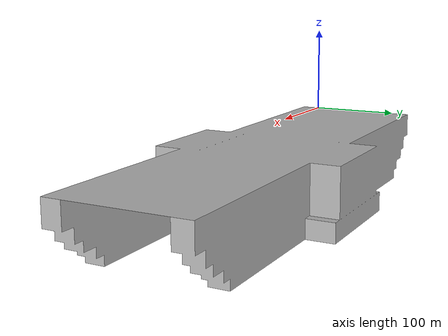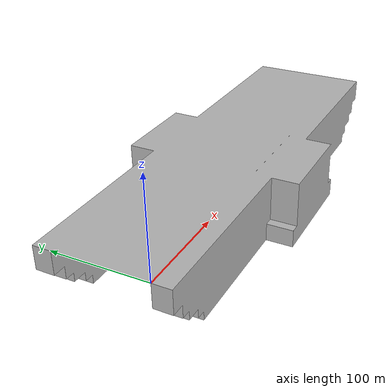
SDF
<?xml version="1.0" ?>
<sdf version="1.0">
<model name="slope_complete">
<static>true</static>
<link name="base">
<pose>0 0 0 0 0 0</pose>
<visual name="visual">
<geometry>
<mesh>
<uri>model://slope/meshes/slope_complete.stl</uri>
</mesh>
</geometry></visual>
<collision name="simple_collision">
<geometry>
<mesh>
<uri>model://slope/meshes/slope_complete.stl</uri>
</mesh>
</geometry>
<surface>
        <friction>
          <ode>
            <mu>1.00</mu>
            <mu2>1.00</mu2>
          </ode>
        </friction>
      </surface>
</collision>
</link>
</model>
</sdf>
